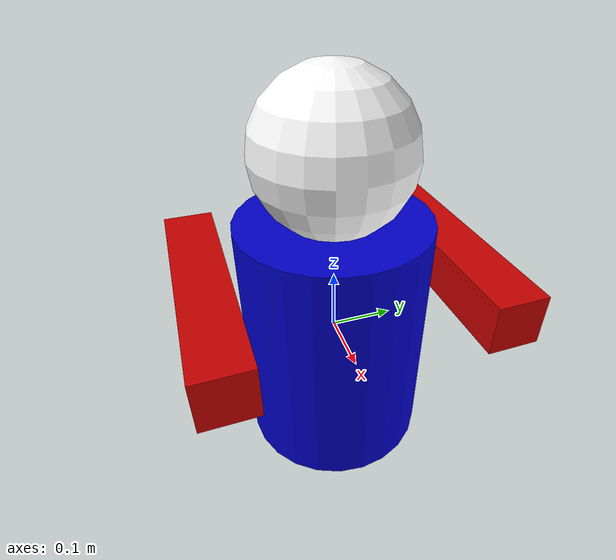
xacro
<?xml version="1.0"?>
<robot name="my_robot" xmlns:xacro="http://www.ros.org/wiki/xacro">

  <xacro:property name="base_radius" value="0.15"/>
  <xacro:property name="base_length" value="0.4"/>
  <xacro:property name="head_radius" value="0.12"/>
  <xacro:property name="arm_length" value="0.4"/>
  <xacro:property name="arm_width" value="0.08"/>
  <xacro:property name="arm_height" value="0.08"/>
  <xacro:property name="mass_value" value="1.0"/>
  <xacro:property name="inertia_value" value="1e-3"/>

  <material name="blue">
    <color rgba="0 0 0.8 1"/>
  </material>

  <material name="white">
    <color rgba="1 1 1 1"/>
  </material>

  <material name="red">
    <color rgba="0.8 0 0 1"/>
  </material>

  <xacro:macro name="unit_inertial">
    <inertial>
      <mass value="${mass_value}"/>
      <inertia ixx="${inertia_value}" ixy="0.0" ixz="0.0"
               iyy="${inertia_value}" iyz="0.0"
               izz="${inertia_value}"/>
    </inertial>
  </xacro:macro>

  <xacro:macro name="arm" params="name y_pos">
    <link name="${name}">
      <visual>
        <geometry>
          <box size="${arm_length} ${arm_width} ${arm_height}"/>
        </geometry>
        <material name="red"/>
      </visual>
      <collision>
        <geometry>
          <box size="${arm_length} ${arm_width} ${arm_height}"/>
        </geometry>
      </collision>
      <xacro:unit_inertial/>
    </link>

    <joint name="base_to_${name}" type="revolute">
      <parent link="base_link"/>
      <child link="${name}"/>
      <origin xyz="0 ${y_pos} 0.1" rpy="0 0 0"/>
      <axis xyz="1 0 0"/>
      <limit lower="-1.57" upper="1.57" effort="10" velocity="10"/>
    </joint>
  </xacro:macro>

  <link name="base_link">
    <visual>
      <geometry>
        <cylinder radius="${base_radius}" length="${base_length}"/>
      </geometry>
      <material name="blue"/>
    </visual>
    <collision>
      <geometry>
        <cylinder radius="${base_radius}" length="${base_length}"/>
      </geometry>
    </collision>
    <xacro:unit_inertial/>
  </link>

  <link name="head">
    <visual>
      <geometry>
        <sphere radius="${head_radius}"/>
      </geometry>
      <material name="white"/>
    </visual>
    <collision>
      <geometry>
        <sphere radius="${head_radius}"/>
      </geometry>
    </collision>
    <xacro:unit_inertial/>
  </link>

  <joint name="base_to_head" type="fixed">
    <parent link="base_link"/>
    <child link="head"/>
    <origin xyz="0 0 0.3"/>
  </joint>

  <xacro:arm name="left_arm" y_pos="0.2"/>
  <xacro:arm name="right_arm" y_pos="-0.2"/>

</robot>
